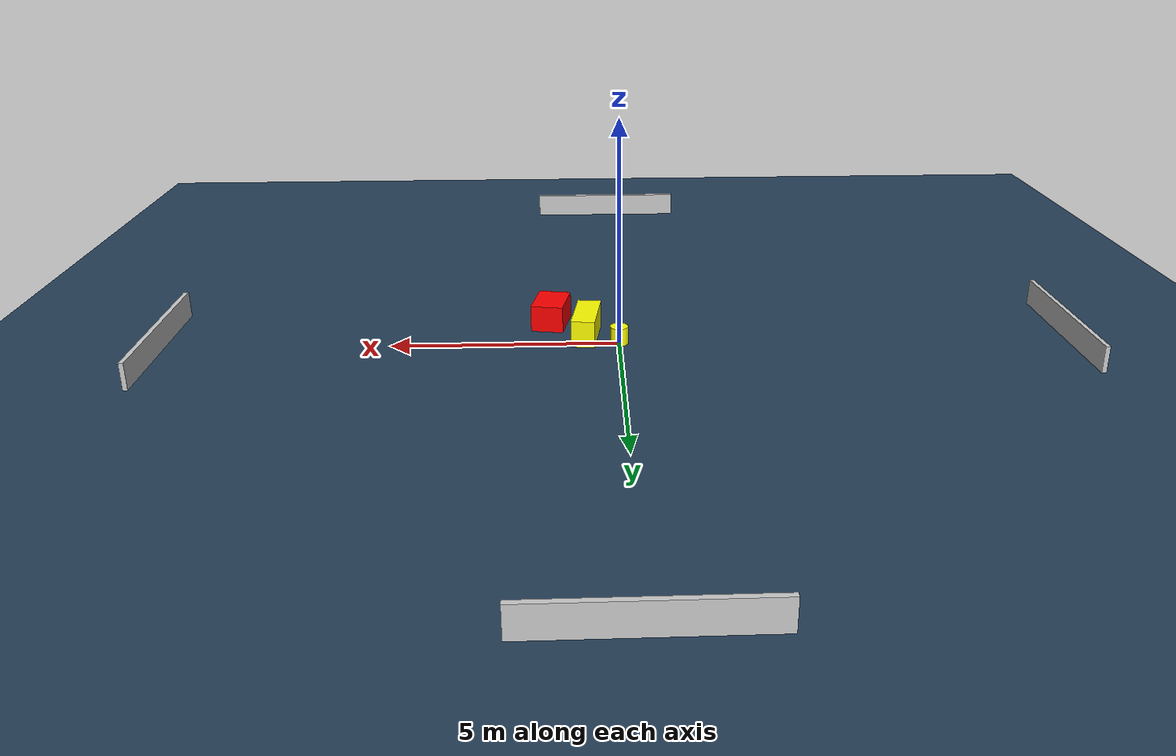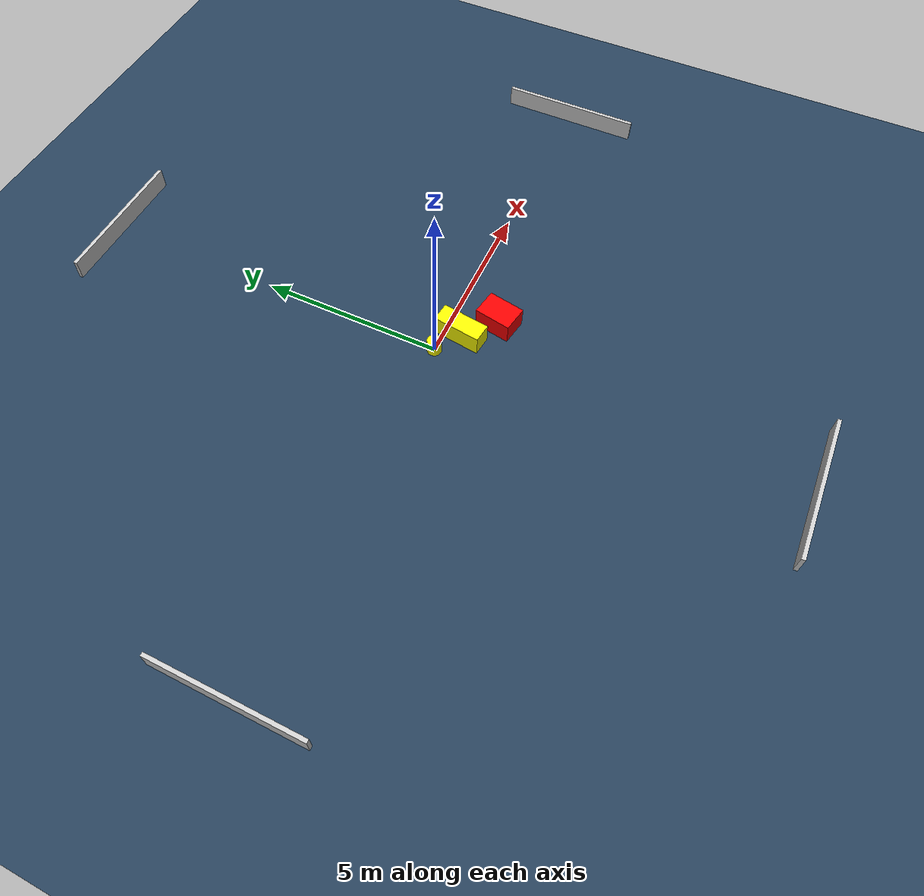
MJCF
<?xml version="1.0" ?>
<mujoco model="generated_environment">
  <option timestep="0.01" integrator="RK4" cone="elliptic"/>
  <default>
    <geom density="1"/>
  </default>
  <asset>
    <texture builtin="gradient" height="3072" name="skybox" rgb1="0.3 0.5 0.7" rgb2="0 0 0" type="skybox" width="512"/>
    <texture builtin="checker" height="300" name="groundplane" rgb1="0.2 0.3 0.4" rgb2="0.1 0.2 0.3" type="2d" width="300"/>
    <material name="groundplane" reflectance="0.2" texrepeat="5 5" texture="groundplane"/>
  </asset>
  <worldbody>
    <light dir="0 0 -1" directional="true" pos="0 0 1.5"/>
    <geom condim="3" friction="0.5 0.005 0.001" material="groundplane" name="floor" pos="0 0 0" size="0 0 0.05" type="plane"/>
    <body name="walls">
      <geom name="wall_1" condim="4" pos="-10.0 0.0 0.3" rgba="0.800000011920929 0.800000011920929 0.800000011920929 1.0" size="0.05 2.0 0.3" type="box"/>
      <geom name="wall_2" condim="4" pos="10.0 0.0 0.3" rgba="0.800000011920929 0.800000011920929 0.800000011920929 1.0" size="0.05 2.0 0.3" type="box"/>
      <geom name="wall_3" condim="4" pos="0.0 -10.0 0.3" rgba="0.800000011920929 0.800000011920929 0.800000011920929 1.0" size="2.0 0.05 0.3" type="box"/>
      <geom name="wall_4" condim="4" pos="0.0 10.0 0.3" rgba="0.800000011920929 0.800000011920929 0.800000011920929 1.0" size="2.0 0.05 0.3" type="box"/>
    </body>
    <body name="robot">
      <joint name="joint_x" type="slide" pos="0 0 0" axis="1 0 0"/>
      <joint name="joint_y" type="slide" pos="0 0 0" axis="0 1 0"/>
      <geom name="robot" type="cylinder" pos="0.0 0.0 0.2" size="0.2 0.2 0.0" mass="5.0" friction="1.0 0.005 0.0001" condim="4" rgba="1.0 1.0 0.0 1.0"/>
    </body>
    <body name="obstacle_1_movable">
      <geom name="obstacle_1_movable" condim="4" pos="0.7167556242590256 -0.43394042434467633 0.3" euler="0 0 82.5184533125849" friction="0.0 0.005 0.001" rgba="1.0 1.0 0.0 1.0" size="0.6576027244812648 0.26331217383643535 0.3" type="box" mass="0.1"/>
      <joint type="free"/>
    </body>
    <body name="obstacle_2_static">
      <geom name="obstacle_2_static" condim="4" pos="1.5139016179234617 -1.1897851042153336 0.3" euler="0 0 169.66542705434046" friction="0.0 0.005 0.001" rgba="1.0 0.0 0.0 1.0" size="0.3637867172890952 0.5058212696655113 0.3" type="box"/>
    </body>
  </worldbody>
  <actuator>
    <motor name="actuator_x" joint="joint_x" gear="1" ctrlrange="-1 1"/>
    <motor name="actuator_y" joint="joint_y" gear="1" ctrlrange="-1 1"/>
  </actuator>
</mujoco>
